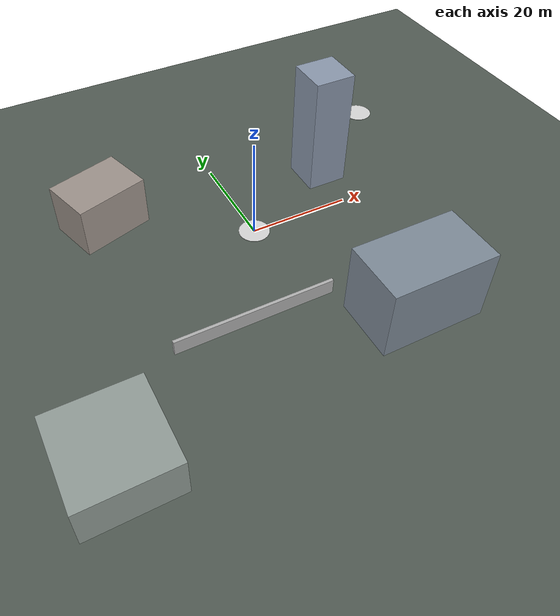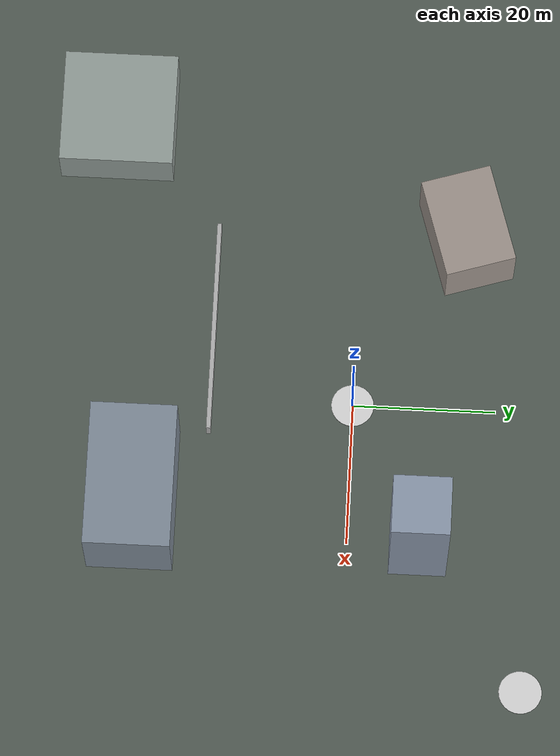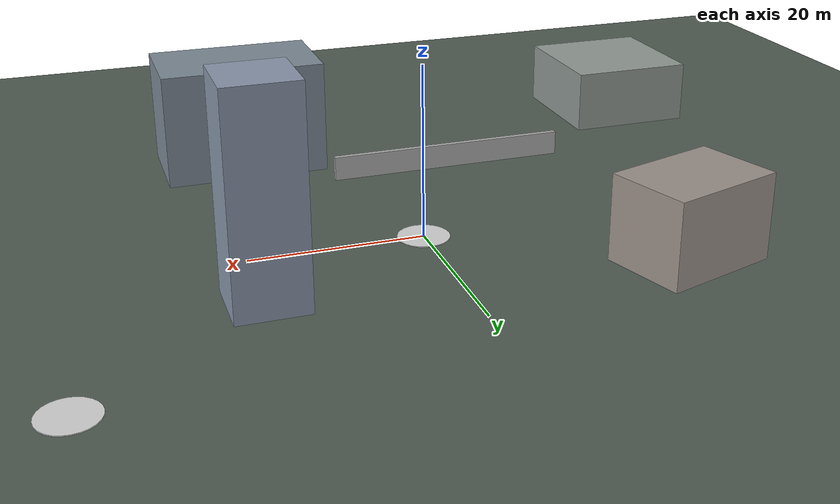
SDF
<?xml version="1.0" ?>
<!--
  test_city: first world. Deliberately simple; the physics block and agent
  models are injected by simapi.engine.gazebo.sdf.build_world_sdf at load time
  (markers below).
-->
<sdf version="1.9">
  <world name="test_city">
    <!-- @physics -->

    <gravity>0 0 -9.8</gravity>
    <spherical_coordinates>
      <surface_model>EARTH_WGS84</surface_model>
      <world_frame_orientation>ENU</world_frame_orientation>
      <latitude_deg>47.3977</latitude_deg>
      <longitude_deg>8.5456</longitude_deg>
      <elevation>488.0</elevation>
      <heading_deg>0</heading_deg>
    </spherical_coordinates>

    <scene>
      <ambient>0.45 0.45 0.5 1</ambient>
      <background>0.68 0.78 0.9 1</background>
      <shadows>true</shadows>
    </scene>

    <light type="directional" name="sun">
      <cast_shadows>true</cast_shadows>
      <pose>0 0 60 0 0 0</pose>
      <diffuse>0.9 0.88 0.8 1</diffuse>
      <specular>0.3 0.3 0.3 1</specular>
      <direction>-0.4 0.3 -0.85</direction>
    </light>

    <model name="ground">
      <static>true</static>
      <link name="link">
        <collision name="collision">
          <geometry><plane><normal>0 0 1</normal><size>400 400</size></plane></geometry>
          <surface><friction><ode><mu>100</mu><mu2>50</mu2></ode></friction></surface>
        </collision>
        <visual name="visual">
          <geometry><plane><normal>0 0 1</normal><size>400 400</size></plane></geometry>
          <material><ambient>0.32 0.36 0.33 1</ambient><diffuse>0.32 0.36 0.33 1</diffuse><specular>0.05 0.05 0.05 1</specular></material>
        </visual>
      </link>
    </model>

    <model name="pad_alpha">
      <static>true</static>
      <pose>0 0 0.05 0 0 0</pose>
      <link name="link">
        <collision name="c"><geometry><cylinder><radius>3</radius><length>0.1</length></cylinder></geometry></collision>
        <visual name="v"><geometry><cylinder><radius>3</radius><length>0.1</length></cylinder></geometry>
          <material><ambient>0.85 0.85 0.85 1</ambient><diffuse>0.85 0.85 0.85 1</diffuse></material></visual>
      </link>
    </model>

    <model name="pad_bravo">
      <static>true</static>
      <pose>40 25 0.05 0 0 0</pose>
      <link name="link">
        <collision name="c"><geometry><cylinder><radius>3</radius><length>0.1</length></cylinder></geometry></collision>
        <visual name="v"><geometry><cylinder><radius>3</radius><length>0.1</length></cylinder></geometry>
          <material><ambient>0.85 0.85 0.85 1</ambient><diffuse>0.85 0.85 0.85 1</diffuse></material></visual>
      </link>
    </model>

    <model name="tower_01">
      <static>true</static>
      <pose>20 10 12 0 0 0</pose>
      <link name="link">
        <collision name="c"><geometry><box><size>8 8 24</size></box></geometry></collision>
        <visual name="v"><geometry><box><size>8 8 24</size></box></geometry>
          <material><ambient>0.55 0.6 0.68 1</ambient><diffuse>0.55 0.6 0.68 1</diffuse></material></visual>
      </link>
    </model>

    <model name="block_02">
      <static>true</static>
      <pose>-25 15 5 0 0 0.3</pose>
      <link name="link">
        <collision name="c"><geometry><box><size>14 10 10</size></box></geometry></collision>
        <visual name="v"><geometry><box><size>14 10 10</size></box></geometry>
          <material><ambient>0.62 0.58 0.55 1</ambient><diffuse>0.62 0.58 0.55 1</diffuse></material></visual>
      </link>
    </model>

    <model name="block_03">
      <static>true</static>
      <pose>15 -30 7 0 0 0</pose>
      <link name="link">
        <collision name="c"><geometry><box><size>20 12 14</size></box></geometry></collision>
        <visual name="v"><geometry><box><size>20 12 14</size></box></geometry>
          <material><ambient>0.5 0.55 0.6 1</ambient><diffuse>0.5 0.55 0.6 1</diffuse></material></visual>
      </link>
    </model>

    <model name="wall_04">
      <static>true</static>
      <pose>-10 -20 1.5 0 0 0</pose>
      <link name="link">
        <collision name="c"><geometry><box><size>30 0.6 3</size></box></geometry></collision>
        <visual name="v"><geometry><box><size>30 0.6 3</size></box></geometry>
          <material><ambient>0.7 0.7 0.7 1</ambient><diffuse>0.7 0.7 0.7 1</diffuse></material></visual>
      </link>
    </model>

    <model name="deck_05">
      <static>true</static>
      <pose>-40 -35 4 0 0 0</pose>
      <link name="link">
        <collision name="c"><geometry><box><size>16 16 8</size></box></geometry></collision>
        <visual name="v"><geometry><box><size>16 16 8</size></box></geometry>
          <material><ambient>0.58 0.62 0.6 1</ambient><diffuse>0.58 0.62 0.6 1</diffuse></material></visual>
      </link>
    </model>

    <!-- @agents -->
  </world>
</sdf>
